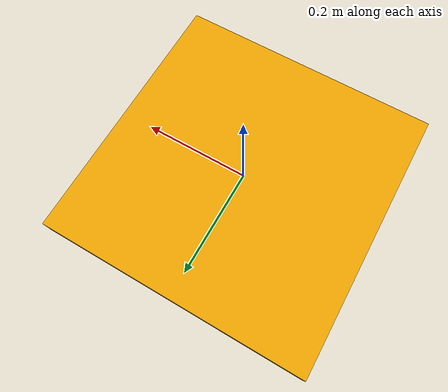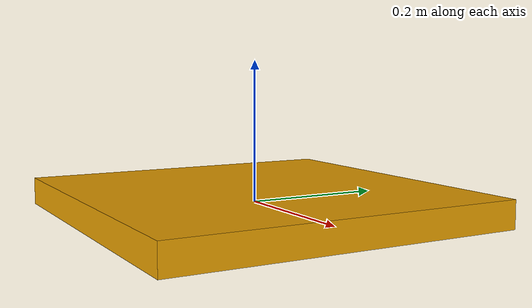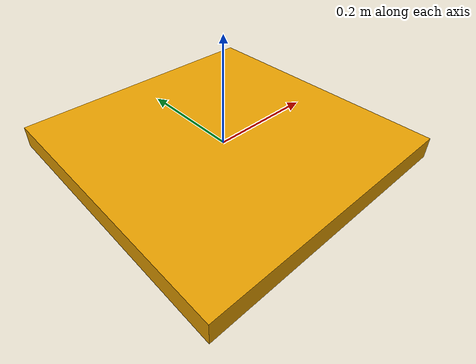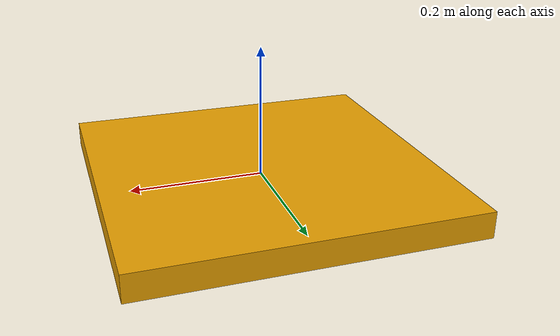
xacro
<?xml version="1.0"?>
<robot name="base" xmlns:xacro="http://ros.org/wiki/xacro">

    <property name="base_size_x" value="0.50"/>
    <property name="base_size_y" value="0.50"/>
    <property name="base_size_z" value="0.04"/>

    <link name="base_link">
        <visual>
            <origin xyz="0 0 0" rpy="0 0 0" />
            <geometry>
                <box size="${base_size_x} ${base_size_y} ${base_size_z}" />
            </geometry>
        </visual>
        <collision>
            <origin xyz="0 0 0" rpy="0 0 0" />
            <geometry>
                <box size="${base_size_x} ${base_size_y} ${base_size_z}" />
            </geometry>
        </collision>
    </link>
</robot>
